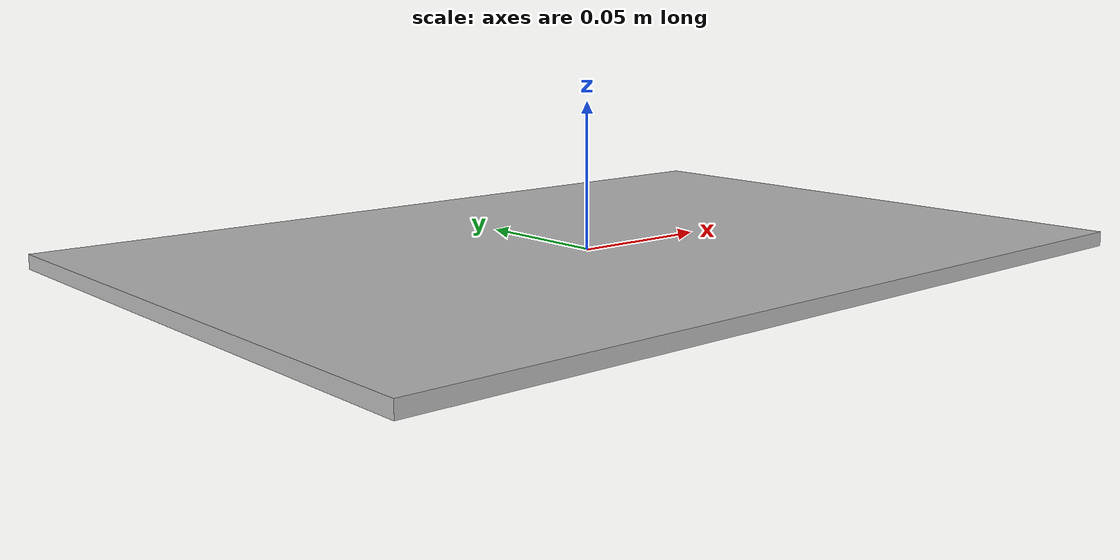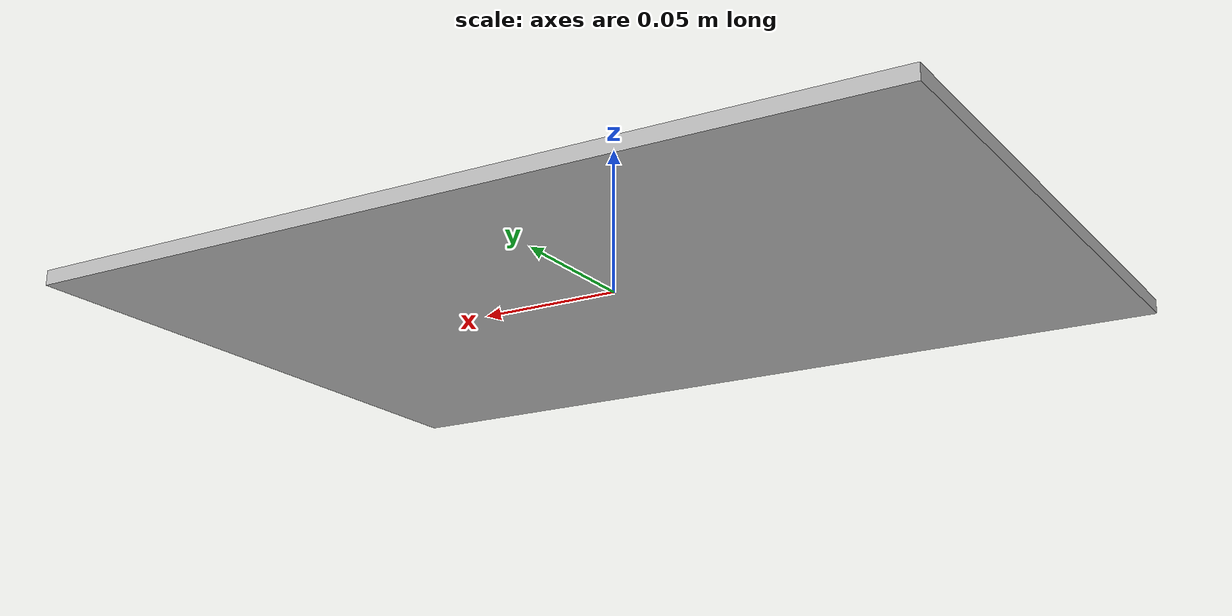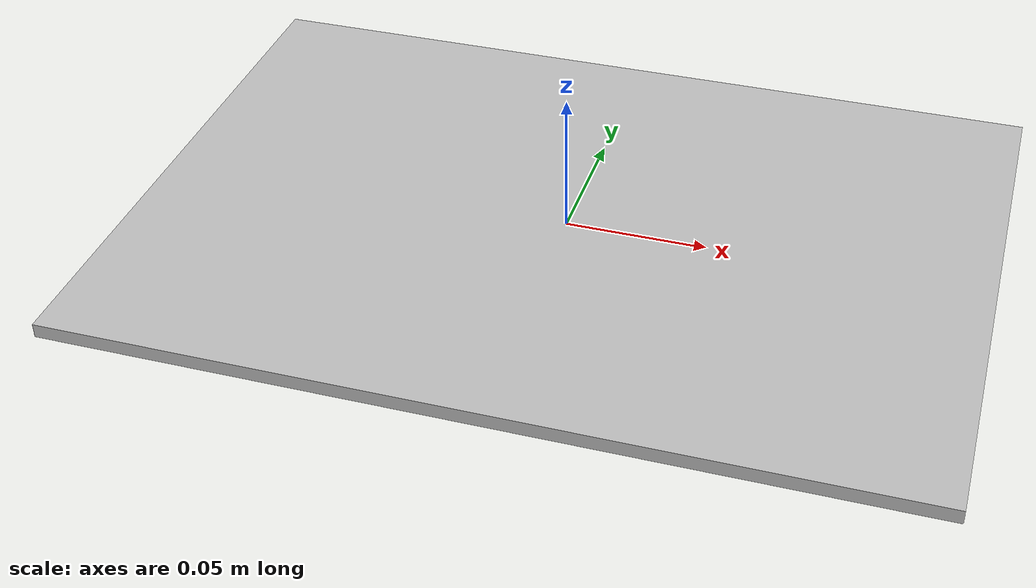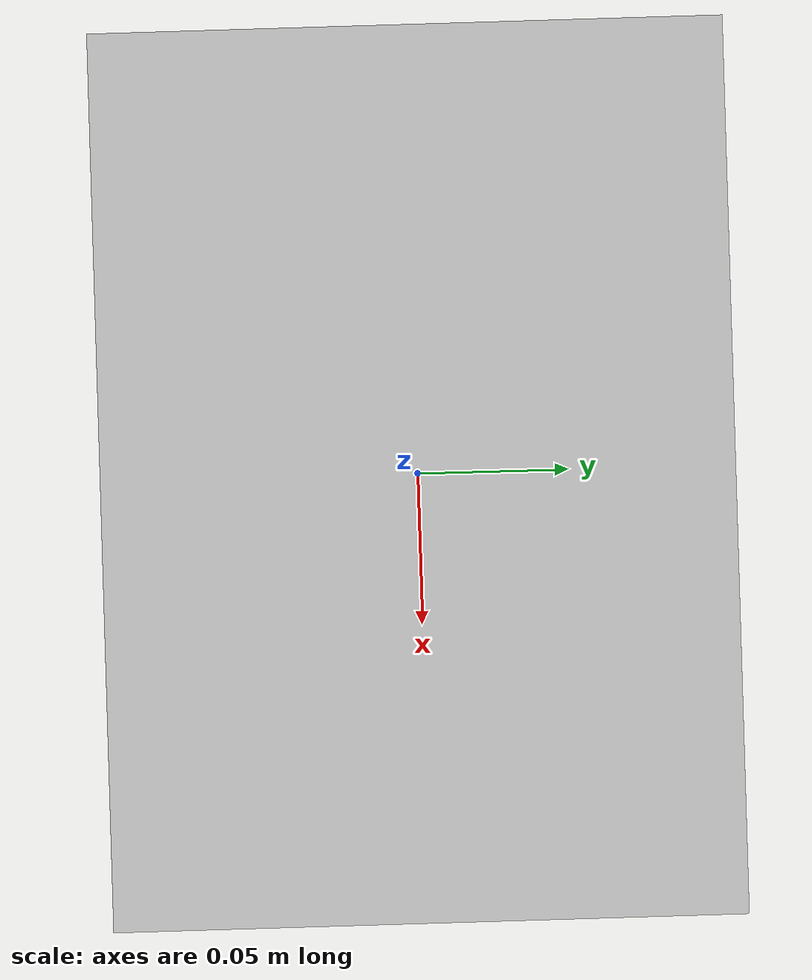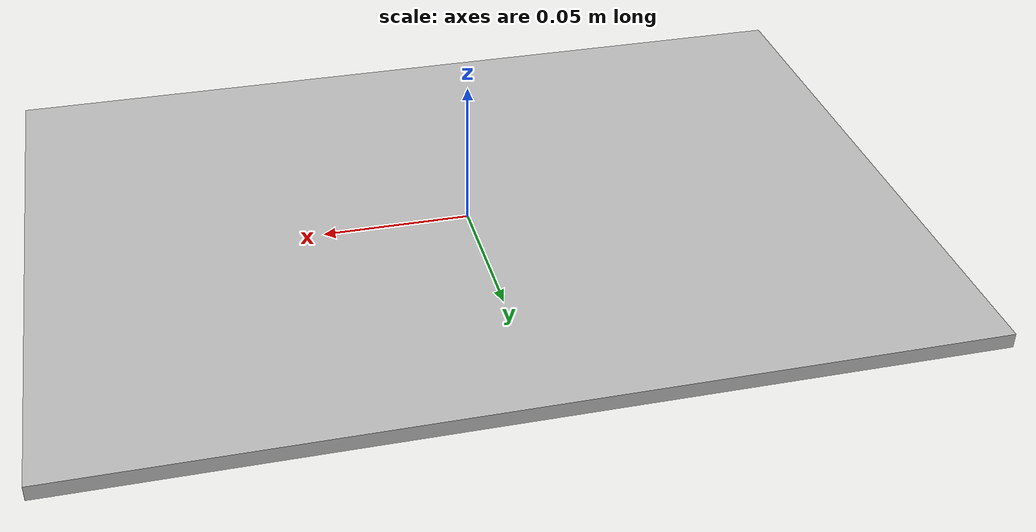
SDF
<?xml version='1.0'?>
<sdf version='1.4'>
  <model name="aruco_a4_100x100">
    <static>true</static>
    <link name='link'>

      <pose>0 0 0 0 0 0</pose>
      <inertial>
        <mass>0.1</mass>
          <inertia>
          <ixx>0.000166667</ixx>
          <iyy>0.000166667</iyy>
          <izz>0.000166667</izz>
        </inertia>
      </inertial>
      <collision name='collision'>
        <geometry>
                <box>
<!--                    A4 paper-->
                  <size>0.297 0.21 0.005</size>
                </box>
        </geometry>
      </collision>

      <visual name='visual'>
        <geometry>
                <box>
                  <size>0.297 0.21 0.005</size>
                </box>
        </geometry>

        <material>
          <script>
            <uri>model://aruco_a4_100x100/materials/scripts</uri>
            <uri>model://aruco_a4_100x100/materials/textures</uri>
            <name>aruco_a4_100x100/Diffuse</name>
          </script>
        </material>
      </visual>
    </link>
  </model>
</sdf>
